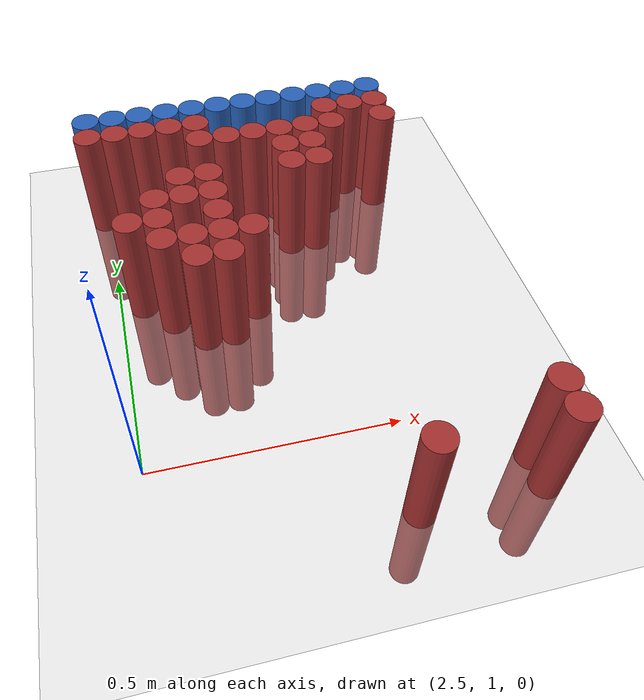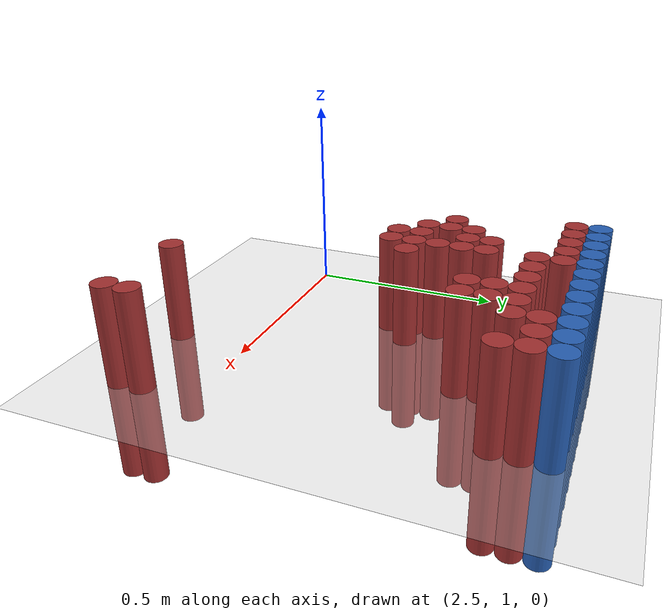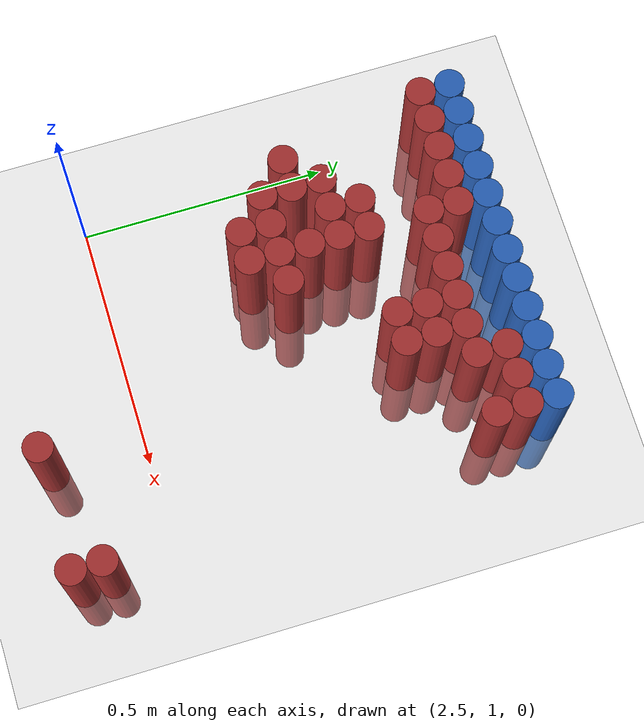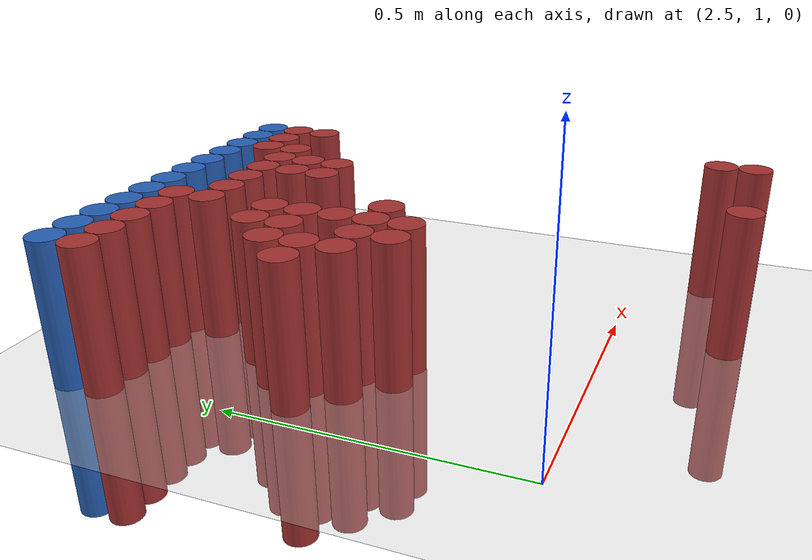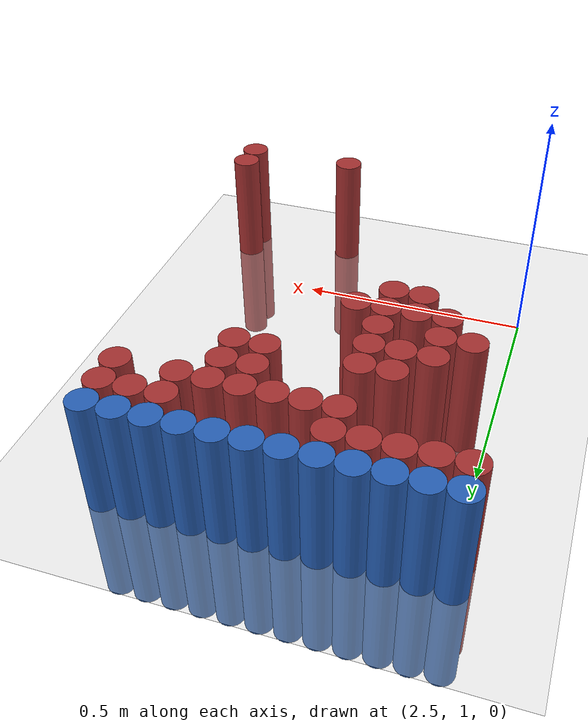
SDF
<sdf version="1.6">
 <world name="default">
  <model name="ground_plane">
   <static>1</static>
   <link name="link">
    <collision name="collision">
     <geometry><plane><normal>0 0 1</normal><size>100 100</size></plane></geometry>
     <surface><friction><ode><mu>100</mu><mu2>50</mu2></ode></friction></surface>
    </collision>
    <visual name="visual">
     <cast_shadows>0</cast_shadows>
     <geometry><plane><normal>0 0 1</normal><size>100 100</size></plane></geometry>
     <material>
      <script><uri>file://media/materials/scripts/gazebo.material</uri><name>Gazebo/Grey</name></script>
     </material>
    </visual>
   </link>
  </model>
  <model name="unit_cylinder_102">
   <static>1</static>
   <pose>2.490000 1.770000 0.000000 0.000000 0.000000 0.000000</pose>
   <link name="link">
    <inertial>
     <mass>1</mass>
     <inertia><ixx>0.145833</ixx><ixy>0</ixy><ixz>0</ixz><iyy>0.145833</iyy><iyz>0</iyz><izz>0.125</izz></inertia>
    </inertial>
    <collision name="collision">
     <geometry><cylinder><radius>0.030000</radius><length>0.5</length></cylinder></geometry>
    </collision>
    <visual name="visual">
     <geometry><cylinder><radius>0.030000</radius><length>0.5</length></cylinder></geometry>
     <material>
      <ambient>0.152000 0.379000 0.720000 1</ambient>
      <diffuse>0.152000 0.379000 0.720000 1</diffuse>
     </material>
     <material>
      <script><name>Gazebo/Grey</name><uri>file://media/materials/scripts/gazebo.material</uri></script>
     </material>
    </visual>
   </link>
  </model>
  <model name="unit_cylinder_103">
   <static>1</static>
   <pose>2.550000 1.770000 0.000000 0.000000 0.000000 0.000000</pose>
   <link name="link">
    <inertial>
     <mass>1</mass>
     <inertia><ixx>0.145833</ixx><ixy>0</ixy><ixz>0</ixz><iyy>0.145833</iyy><iyz>0</iyz><izz>0.125</izz></inertia>
    </inertial>
    <collision name="collision">
     <geometry><cylinder><radius>0.030000</radius><length>0.5</length></cylinder></geometry>
    </collision>
    <visual name="visual">
     <geometry><cylinder><radius>0.030000</radius><length>0.5</length></cylinder></geometry>
     <material>
      <ambient>0.152000 0.379000 0.720000 1</ambient>
      <diffuse>0.152000 0.379000 0.720000 1</diffuse>
     </material>
     <material>
      <script><name>Gazebo/Grey</name><uri>file://media/materials/scripts/gazebo.material</uri></script>
     </material>
    </visual>
   </link>
  </model>
  <model name="unit_cylinder_104">
   <static>1</static>
   <pose>2.610000 1.770000 0.000000 0.000000 0.000000 0.000000</pose>
   <link name="link">
    <inertial>
     <mass>1</mass>
     <inertia><ixx>0.145833</ixx><ixy>0</ixy><ixz>0</ixz><iyy>0.145833</iyy><iyz>0</iyz><izz>0.125</izz></inertia>
    </inertial>
    <collision name="collision">
     <geometry><cylinder><radius>0.030000</radius><length>0.5</length></cylinder></geometry>
    </collision>
    <visual name="visual">
     <geometry><cylinder><radius>0.030000</radius><length>0.5</length></cylinder></geometry>
     <material>
      <ambient>0.152000 0.379000 0.720000 1</ambient>
      <diffuse>0.152000 0.379000 0.720000 1</diffuse>
     </material>
     <material>
      <script><name>Gazebo/Grey</name><uri>file://media/materials/scripts/gazebo.material</uri></script>
     </material>
    </visual>
   </link>
  </model>
  <model name="unit_cylinder_105">
   <static>1</static>
   <pose>2.670000 1.770000 0.000000 0.000000 0.000000 0.000000</pose>
   <link name="link">
    <inertial>
     <mass>1</mass>
     <inertia><ixx>0.145833</ixx><ixy>0</ixy><ixz>0</ixz><iyy>0.145833</iyy><iyz>0</iyz><izz>0.125</izz></inertia>
    </inertial>
    <collision name="collision">
     <geometry><cylinder><radius>0.030000</radius><length>0.5</length></cylinder></geometry>
    </collision>
    <visual name="visual">
     <geometry><cylinder><radius>0.030000</radius><length>0.5</length></cylinder></geometry>
     <material>
      <ambient>0.152000 0.379000 0.720000 1</ambient>
      <diffuse>0.152000 0.379000 0.720000 1</diffuse>
     </material>
     <material>
      <script><name>Gazebo/Grey</name><uri>file://media/materials/scripts/gazebo.material</uri></script>
     </material>
    </visual>
   </link>
  </model>
  <model name="unit_cylinder_106">
   <static>1</static>
   <pose>2.730000 1.770000 0.000000 0.000000 0.000000 0.000000</pose>
   <link name="link">
    <inertial>
     <mass>1</mass>
     <inertia><ixx>0.145833</ixx><ixy>0</ixy><ixz>0</ixz><iyy>0.145833</iyy><iyz>0</iyz><izz>0.125</izz></inertia>
    </inertial>
    <collision name="collision">
     <geometry><cylinder><radius>0.030000</radius><length>0.5</length></cylinder></geometry>
    </collision>
    <visual name="visual">
     <geometry><cylinder><radius>0.030000</radius><length>0.5</length></cylinder></geometry>
     <material>
      <ambient>0.152000 0.379000 0.720000 1</ambient>
      <diffuse>0.152000 0.379000 0.720000 1</diffuse>
     </material>
     <material>
      <script><name>Gazebo/Grey</name><uri>file://media/materials/scripts/gazebo.material</uri></script>
     </material>
    </visual>
   </link>
  </model>
  <model name="unit_cylinder_107">
   <static>1</static>
   <pose>2.790000 1.770000 0.000000 0.000000 0.000000 0.000000</pose>
   <link name="link">
    <inertial>
     <mass>1</mass>
     <inertia><ixx>0.145833</ixx><ixy>0</ixy><ixz>0</ixz><iyy>0.145833</iyy><iyz>0</iyz><izz>0.125</izz></inertia>
    </inertial>
    <collision name="collision">
     <geometry><cylinder><radius>0.030000</radius><length>0.5</length></cylinder></geometry>
    </collision>
    <visual name="visual">
     <geometry><cylinder><radius>0.030000</radius><length>0.5</length></cylinder></geometry>
     <material>
      <ambient>0.152000 0.379000 0.720000 1</ambient>
      <diffuse>0.152000 0.379000 0.720000 1</diffuse>
     </material>
     <material>
      <script><name>Gazebo/Grey</name><uri>file://media/materials/scripts/gazebo.material</uri></script>
     </material>
    </visual>
   </link>
  </model>
  <model name="unit_cylinder_108">
   <static>1</static>
   <pose>2.850000 1.770000 0.000000 0.000000 0.000000 0.000000</pose>
   <link name="link">
    <inertial>
     <mass>1</mass>
     <inertia><ixx>0.145833</ixx><ixy>0</ixy><ixz>0</ixz><iyy>0.145833</iyy><iyz>0</iyz><izz>0.125</izz></inertia>
    </inertial>
    <collision name="collision">
     <geometry><cylinder><radius>0.030000</radius><length>0.5</length></cylinder></geometry>
    </collision>
    <visual name="visual">
     <geometry><cylinder><radius>0.030000</radius><length>0.5</length></cylinder></geometry>
     <material>
      <ambient>0.152000 0.379000 0.720000 1</ambient>
      <diffuse>0.152000 0.379000 0.720000 1</diffuse>
     </material>
     <material>
      <script><name>Gazebo/Grey</name><uri>file://media/materials/scripts/gazebo.material</uri></script>
     </material>
    </visual>
   </link>
  </model>
  <model name="unit_cylinder_109">
   <static>1</static>
   <pose>2.910000 1.770000 0.000000 0.000000 0.000000 0.000000</pose>
   <link name="link">
    <inertial>
     <mass>1</mass>
     <inertia><ixx>0.145833</ixx><ixy>0</ixy><ixz>0</ixz><iyy>0.145833</iyy><iyz>0</iyz><izz>0.125</izz></inertia>
    </inertial>
    <collision name="collision">
     <geometry><cylinder><radius>0.030000</radius><length>0.5</length></cylinder></geometry>
    </collision>
    <visual name="visual">
     <geometry><cylinder><radius>0.030000</radius><length>0.5</length></cylinder></geometry>
     <material>
      <ambient>0.152000 0.379000 0.720000 1</ambient>
      <diffuse>0.152000 0.379000 0.720000 1</diffuse>
     </material>
     <material>
      <script><name>Gazebo/Grey</name><uri>file://media/materials/scripts/gazebo.material</uri></script>
     </material>
    </visual>
   </link>
  </model>
  <model name="unit_cylinder_110">
   <static>1</static>
   <pose>2.970000 1.770000 0.000000 0.000000 0.000000 0.000000</pose>
   <link name="link">
    <inertial>
     <mass>1</mass>
     <inertia><ixx>0.145833</ixx><ixy>0</ixy><ixz>0</ixz><iyy>0.145833</iyy><iyz>0</iyz><izz>0.125</izz></inertia>
    </inertial>
    <collision name="collision">
     <geometry><cylinder><radius>0.030000</radius><length>0.5</length></cylinder></geometry>
    </collision>
    <visual name="visual">
     <geometry><cylinder><radius>0.030000</radius><length>0.5</length></cylinder></geometry>
     <material>
      <ambient>0.152000 0.379000 0.720000 1</ambient>
      <diffuse>0.152000 0.379000 0.720000 1</diffuse>
     </material>
     <material>
      <script><name>Gazebo/Grey</name><uri>file://media/materials/scripts/gazebo.material</uri></script>
     </material>
    </visual>
   </link>
  </model>
  <model name="unit_cylinder_111">
   <static>1</static>
   <pose>3.030000 1.770000 0.000000 0.000000 0.000000 0.000000</pose>
   <link name="link">
    <inertial>
     <mass>1</mass>
     <inertia><ixx>0.145833</ixx><ixy>0</ixy><ixz>0</ixz><iyy>0.145833</iyy><iyz>0</iyz><izz>0.125</izz></inertia>
    </inertial>
    <collision name="collision">
     <geometry><cylinder><radius>0.030000</radius><length>0.5</length></cylinder></geometry>
    </collision>
    <visual name="visual">
     <geometry><cylinder><radius>0.030000</radius><length>0.5</length></cylinder></geometry>
     <material>
      <ambient>0.152000 0.379000 0.720000 1</ambient>
      <diffuse>0.152000 0.379000 0.720000 1</diffuse>
     </material>
     <material>
      <script><name>Gazebo/Grey</name><uri>file://media/materials/scripts/gazebo.material</uri></script>
     </material>
    </visual>
   </link>
  </model>
  <model name="unit_cylinder_112">
   <static>1</static>
   <pose>3.090000 1.770000 0.000000 0.000000 0.000000 0.000000</pose>
   <link name="link">
    <inertial>
     <mass>1</mass>
     <inertia><ixx>0.145833</ixx><ixy>0</ixy><ixz>0</ixz><iyy>0.145833</iyy><iyz>0</iyz><izz>0.125</izz></inertia>
    </inertial>
    <collision name="collision">
     <geometry><cylinder><radius>0.030000</radius><length>0.5</length></cylinder></geometry>
    </collision>
    <visual name="visual">
     <geometry><cylinder><radius>0.030000</radius><length>0.5</length></cylinder></geometry>
     <material>
      <ambient>0.152000 0.379000 0.720000 1</ambient>
      <diffuse>0.152000 0.379000 0.720000 1</diffuse>
     </material>
     <material>
      <script><name>Gazebo/Grey</name><uri>file://media/materials/scripts/gazebo.material</uri></script>
     </material>
    </visual>
   </link>
  </model>
  <model name="unit_cylinder_113">
   <static>1</static>
   <pose>3.150000 1.770000 0.000000 0.000000 0.000000 0.000000</pose>
   <link name="link">
    <inertial>
     <mass>1</mass>
     <inertia><ixx>0.145833</ixx><ixy>0</ixy><ixz>0</ixz><iyy>0.145833</iyy><iyz>0</iyz><izz>0.125</izz></inertia>
    </inertial>
    <collision name="collision">
     <geometry><cylinder><radius>0.030000</radius><length>0.5</length></cylinder></geometry>
    </collision>
    <visual name="visual">
     <geometry><cylinder><radius>0.030000</radius><length>0.5</length></cylinder></geometry>
     <material>
      <ambient>0.152000 0.379000 0.720000 1</ambient>
      <diffuse>0.152000 0.379000 0.720000 1</diffuse>
     </material>
     <material>
      <script><name>Gazebo/Grey</name><uri>file://media/materials/scripts/gazebo.material</uri></script>
     </material>
    </visual>
   </link>
  </model>
  <model name="unit_cylinder_130">
   <static>1</static>
   <pose>2.490000 1.710000 0.000000 0.000000 0.000000 0.000000</pose>
   <link name="link">
    <inertial>
     <mass>1</mass>
     <inertia><ixx>0.145833</ixx><ixy>0</ixy><ixz>0</ixz><iyy>0.145833</iyy><iyz>0</iyz><izz>0.125</izz></inertia>
    </inertial>
    <collision name="collision">
     <geometry><cylinder><radius>0.030000</radius><length>0.5</length></cylinder></geometry>
    </collision>
    <visual name="visual">
     <geometry><cylinder><radius>0.030000</radius><length>0.5</length></cylinder></geometry>
     <material>
      <ambient>0.648000 0.192000 0.192000 1</ambient>
      <diffuse>0.648000 0.192000 0.192000 1</diffuse>
     </material>
     <material>
      <script><name>Gazebo/Grey</name><uri>file://media/materials/scripts/gazebo.material</uri></script>
     </material>
    </visual>
   </link>
  </model>
  <model name="unit_cylinder_131">
   <static>1</static>
   <pose>2.550000 1.710000 0.000000 0.000000 0.000000 0.000000</pose>
   <link name="link">
    <inertial>
     <mass>1</mass>
     <inertia><ixx>0.145833</ixx><ixy>0</ixy><ixz>0</ixz><iyy>0.145833</iyy><iyz>0</iyz><izz>0.125</izz></inertia>
    </inertial>
    <collision name="collision">
     <geometry><cylinder><radius>0.030000</radius><length>0.5</length></cylinder></geometry>
    </collision>
    <visual name="visual">
     <geometry><cylinder><radius>0.030000</radius><length>0.5</length></cylinder></geometry>
     <material>
      <ambient>0.648000 0.192000 0.192000 1</ambient>
      <diffuse>0.648000 0.192000 0.192000 1</diffuse>
     </material>
     <material>
      <script><name>Gazebo/Grey</name><uri>file://media/materials/scripts/gazebo.material</uri></script>
     </material>
    </visual>
   </link>
  </model>
  <model name="unit_cylinder_132">
   <static>1</static>
   <pose>2.610000 1.710000 0.000000 0.000000 0.000000 0.000000</pose>
   <link name="link">
    <inertial>
     <mass>1</mass>
     <inertia><ixx>0.145833</ixx><ixy>0</ixy><ixz>0</ixz><iyy>0.145833</iyy><iyz>0</iyz><izz>0.125</izz></inertia>
    </inertial>
    <collision name="collision">
     <geometry><cylinder><radius>0.030000</radius><length>0.5</length></cylinder></geometry>
    </collision>
    <visual name="visual">
     <geometry><cylinder><radius>0.030000</radius><length>0.5</length></cylinder></geometry>
     <material>
      <ambient>0.648000 0.192000 0.192000 1</ambient>
      <diffuse>0.648000 0.192000 0.192000 1</diffuse>
     </material>
     <material>
      <script><name>Gazebo/Grey</name><uri>file://media/materials/scripts/gazebo.material</uri></script>
     </material>
    </visual>
   </link>
  </model>
  <model name="unit_cylinder_133">
   <static>1</static>
   <pose>2.670000 1.710000 0.000000 0.000000 0.000000 0.000000</pose>
   <link name="link">
    <inertial>
     <mass>1</mass>
     <inertia><ixx>0.145833</ixx><ixy>0</ixy><ixz>0</ixz><iyy>0.145833</iyy><iyz>0</iyz><izz>0.125</izz></inertia>
    </inertial>
    <collision name="collision">
     <geometry><cylinder><radius>0.030000</radius><length>0.5</length></cylinder></geometry>
    </collision>
    <visual name="visual">
     <geometry><cylinder><radius>0.030000</radius><length>0.5</length></cylinder></geometry>
     <material>
      <ambient>0.648000 0.192000 0.192000 1</ambient>
      <diffuse>0.648000 0.192000 0.192000 1</diffuse>
     </material>
     <material>
      <script><name>Gazebo/Grey</name><uri>file://media/materials/scripts/gazebo.material</uri></script>
     </material>
    </visual>
   </link>
  </model>
  <model name="unit_cylinder_134">
   <static>1</static>
   <pose>2.730000 1.710000 0.000000 0.000000 0.000000 0.000000</pose>
   <link name="link">
    <inertial>
     <mass>1</mass>
     <inertia><ixx>0.145833</ixx><ixy>0</ixy><ixz>0</ixz><iyy>0.145833</iyy><iyz>0</iyz><izz>0.125</izz></inertia>
    </inertial>
    <collision name="collision">
     <geometry><cylinder><radius>0.030000</radius><length>0.5</length></cylinder></geometry>
    </collision>
    <visual name="visual">
     <geometry><cylinder><radius>0.030000</radius><length>0.5</length></cylinder></geometry>
     <material>
      <ambient>0.648000 0.192000 0.192000 1</ambient>
      <diffuse>0.648000 0.192000 0.192000 1</diffuse>
     </material>
     <material>
      <script><name>Gazebo/Grey</name><uri>file://media/materials/scripts/gazebo.material</uri></script>
     </material>
    </visual>
   </link>
  </model>
  <model name="unit_cylinder_135">
   <static>1</static>
   <pose>3.030000 1.710000 0.000000 0.000000 0.000000 0.000000</pose>
   <link name="link">
    <inertial>
     <mass>1</mass>
     <inertia><ixx>0.145833</ixx><ixy>0</ixy><ixz>0</ixz><iyy>0.145833</iyy><iyz>0</iyz><izz>0.125</izz></inertia>
    </inertial>
    <collision name="collision">
     <geometry><cylinder><radius>0.030000</radius><length>0.5</length></cylinder></geometry>
    </collision>
    <visual name="visual">
     <geometry><cylinder><radius>0.030000</radius><length>0.5</length></cylinder></geometry>
     <material>
      <ambient>0.648000 0.192000 0.192000 1</ambient>
      <diffuse>0.648000 0.192000 0.192000 1</diffuse>
     </material>
     <material>
      <script><name>Gazebo/Grey</name><uri>file://media/materials/scripts/gazebo.material</uri></script>
     </material>
    </visual>
   </link>
  </model>
  <model name="unit_cylinder_136">
   <static>1</static>
   <pose>3.090000 1.710000 0.000000 0.000000 0.000000 0.000000</pose>
   <link name="link">
    <inertial>
     <mass>1</mass>
     <inertia><ixx>0.145833</ixx><ixy>0</ixy><ixz>0</ixz><iyy>0.145833</iyy><iyz>0</iyz><izz>0.125</izz></inertia>
    </inertial>
    <collision name="collision">
     <geometry><cylinder><radius>0.030000</radius><length>0.5</length></cylinder></geometry>
    </collision>
    <visual name="visual">
     <geometry><cylinder><radius>0.030000</radius><length>0.5</length></cylinder></geometry>
     <material>
      <ambient>0.648000 0.192000 0.192000 1</ambient>
      <diffuse>0.648000 0.192000 0.192000 1</diffuse>
     </material>
     <material>
      <script><name>Gazebo/Grey</name><uri>file://media/materials/scripts/gazebo.material</uri></script>
     </material>
    </visual>
   </link>
  </model>
  <model name="unit_cylinder_137">
   <static>1</static>
   <pose>3.150000 1.710000 0.000000 0.000000 0.000000 0.000000</pose>
   <link name="link">
    <inertial>
     <mass>1</mass>
     <inertia><ixx>0.145833</ixx><ixy>0</ixy><ixz>0</ixz><iyy>0.145833</iyy><iyz>0</iyz><izz>0.125</izz></inertia>
    </inertial>
    <collision name="collision">
     <geometry><cylinder><radius>0.030000</radius><length>0.5</length></cylinder></geometry>
    </collision>
    <visual name="visual">
     <geometry><cylinder><radius>0.030000</radius><length>0.5</length></cylinder></geometry>
     <material>
      <ambient>0.648000 0.192000 0.192000 1</ambient>
      <diffuse>0.648000 0.192000 0.192000 1</diffuse>
     </material>
     <material>
      <script><name>Gazebo/Grey</name><uri>file://media/materials/scripts/gazebo.material</uri></script>
     </material>
    </visual>
   </link>
  </model>
  <model name="unit_cylinder_147">
   <static>1</static>
   <pose>2.730000 1.650000 0.000000 0.000000 0.000000 0.000000</pose>
   <link name="link">
    <inertial>
     <mass>1</mass>
     <inertia><ixx>0.145833</ixx><ixy>0</ixy><ixz>0</ixz><iyy>0.145833</iyy><iyz>0</iyz><izz>0.125</izz></inertia>
    </inertial>
    <collision name="collision">
     <geometry><cylinder><radius>0.030000</radius><length>0.5</length></cylinder></geometry>
    </collision>
    <visual name="visual">
     <geometry><cylinder><radius>0.030000</radius><length>0.5</length></cylinder></geometry>
     <material>
      <ambient>0.648000 0.192000 0.192000 1</ambient>
      <diffuse>0.648000 0.192000 0.192000 1</diffuse>
     </material>
     <material>
      <script><name>Gazebo/Grey</name><uri>file://media/materials/scripts/gazebo.material</uri></script>
     </material>
    </visual>
   </link>
  </model>
  <model name="unit_cylinder_148">
   <static>1</static>
   <pose>2.790000 1.650000 0.000000 0.000000 0.000000 0.000000</pose>
   <link name="link">
    <inertial>
     <mass>1</mass>
     <inertia><ixx>0.145833</ixx><ixy>0</ixy><ixz>0</ixz><iyy>0.145833</iyy><iyz>0</iyz><izz>0.125</izz></inertia>
    </inertial>
    <collision name="collision">
     <geometry><cylinder><radius>0.030000</radius><length>0.5</length></cylinder></geometry>
    </collision>
    <visual name="visual">
     <geometry><cylinder><radius>0.030000</radius><length>0.5</length></cylinder></geometry>
     <material>
      <ambient>0.648000 0.192000 0.192000 1</ambient>
      <diffuse>0.648000 0.192000 0.192000 1</diffuse>
     </material>
     <material>
      <script><name>Gazebo/Grey</name><uri>file://media/materials/scripts/gazebo.material</uri></script>
     </material>
    </visual>
   </link>
  </model>
  <model name="unit_cylinder_149">
   <static>1</static>
   <pose>2.850000 1.650000 0.000000 0.000000 0.000000 0.000000</pose>
   <link name="link">
    <inertial>
     <mass>1</mass>
     <inertia><ixx>0.145833</ixx><ixy>0</ixy><ixz>0</ixz><iyy>0.145833</iyy><iyz>0</iyz><izz>0.125</izz></inertia>
    </inertial>
    <collision name="collision">
     <geometry><cylinder><radius>0.030000</radius><length>0.5</length></cylinder></geometry>
    </collision>
    <visual name="visual">
     <geometry><cylinder><radius>0.030000</radius><length>0.5</length></cylinder></geometry>
     <material>
      <ambient>0.648000 0.192000 0.192000 1</ambient>
      <diffuse>0.648000 0.192000 0.192000 1</diffuse>
     </material>
     <material>
      <script><name>Gazebo/Grey</name><uri>file://media/materials/scripts/gazebo.material</uri></script>
     </material>
    </visual>
   </link>
  </model>
  <model name="unit_cylinder_150">
   <static>1</static>
   <pose>2.910000 1.650000 0.000000 0.000000 0.000000 0.000000</pose>
   <link name="link">
    <inertial>
     <mass>1</mass>
     <inertia><ixx>0.145833</ixx><ixy>0</ixy><ixz>0</ixz><iyy>0.145833</iyy><iyz>0</iyz><izz>0.125</izz></inertia>
    </inertial>
    <collision name="collision">
     <geometry><cylinder><radius>0.030000</radius><length>0.5</length></cylinder></geometry>
    </collision>
    <visual name="visual">
     <geometry><cylinder><radius>0.030000</radius><length>0.5</length></cylinder></geometry>
     <material>
      <ambient>0.648000 0.192000 0.192000 1</ambient>
      <diffuse>0.648000 0.192000 0.192000 1</diffuse>
     </material>
     <material>
      <script><name>Gazebo/Grey</name><uri>file://media/materials/scripts/gazebo.material</uri></script>
     </material>
    </visual>
   </link>
  </model>
  <model name="unit_cylinder_151">
   <static>1</static>
   <pose>2.970000 1.650000 0.000000 0.000000 0.000000 0.000000</pose>
   <link name="link">
    <inertial>
     <mass>1</mass>
     <inertia><ixx>0.145833</ixx><ixy>0</ixy><ixz>0</ixz><iyy>0.145833</iyy><iyz>0</iyz><izz>0.125</izz></inertia>
    </inertial>
    <collision name="collision">
     <geometry><cylinder><radius>0.030000</radius><length>0.5</length></cylinder></geometry>
    </collision>
    <visual name="visual">
     <geometry><cylinder><radius>0.030000</radius><length>0.5</length></cylinder></geometry>
     <material>
      <ambient>0.648000 0.192000 0.192000 1</ambient>
      <diffuse>0.648000 0.192000 0.192000 1</diffuse>
     </material>
     <material>
      <script><name>Gazebo/Grey</name><uri>file://media/materials/scripts/gazebo.material</uri></script>
     </material>
    </visual>
   </link>
  </model>
  <model name="unit_cylinder_152">
   <static>1</static>
   <pose>3.030000 1.650000 0.000000 0.000000 0.000000 0.000000</pose>
   <link name="link">
    <inertial>
     <mass>1</mass>
     <inertia><ixx>0.145833</ixx><ixy>0</ixy><ixz>0</ixz><iyy>0.145833</iyy><iyz>0</iyz><izz>0.125</izz></inertia>
    </inertial>
    <collision name="collision">
     <geometry><cylinder><radius>0.030000</radius><length>0.5</length></cylinder></geometry>
    </collision>
    <visual name="visual">
     <geometry><cylinder><radius>0.030000</radius><length>0.5</length></cylinder></geometry>
     <material>
      <ambient>0.648000 0.192000 0.192000 1</ambient>
      <diffuse>0.648000 0.192000 0.192000 1</diffuse>
     </material>
     <material>
      <script><name>Gazebo/Grey</name><uri>file://media/materials/scripts/gazebo.material</uri></script>
     </material>
    </visual>
   </link>
  </model>
  <model name="unit_cylinder_153">
   <static>1</static>
   <pose>3.150000 1.650000 0.000000 0.000000 0.000000 0.000000</pose>
   <link name="link">
    <inertial>
     <mass>1</mass>
     <inertia><ixx>0.145833</ixx><ixy>0</ixy><ixz>0</ixz><iyy>0.145833</iyy><iyz>0</iyz><izz>0.125</izz></inertia>
    </inertial>
    <collision name="collision">
     <geometry><cylinder><radius>0.030000</radius><length>0.5</length></cylinder></geometry>
    </collision>
    <visual name="visual">
     <geometry><cylinder><radius>0.030000</radius><length>0.5</length></cylinder></geometry>
     <material>
      <ambient>0.648000 0.192000 0.192000 1</ambient>
      <diffuse>0.648000 0.192000 0.192000 1</diffuse>
     </material>
     <material>
      <script><name>Gazebo/Grey</name><uri>file://media/materials/scripts/gazebo.material</uri></script>
     </material>
    </visual>
   </link>
  </model>
  <model name="unit_cylinder_160">
   <static>1</static>
   <pose>2.910000 1.590000 0.000000 0.000000 0.000000 0.000000</pose>
   <link name="link">
    <inertial>
     <mass>1</mass>
     <inertia><ixx>0.145833</ixx><ixy>0</ixy><ixz>0</ixz><iyy>0.145833</iyy><iyz>0</iyz><izz>0.125</izz></inertia>
    </inertial>
    <collision name="collision">
     <geometry><cylinder><radius>0.030000</radius><length>0.5</length></cylinder></geometry>
    </collision>
    <visual name="visual">
     <geometry><cylinder><radius>0.030000</radius><length>0.5</length></cylinder></geometry>
     <material>
      <ambient>0.648000 0.192000 0.192000 1</ambient>
      <diffuse>0.648000 0.192000 0.192000 1</diffuse>
     </material>
     <material>
      <script><name>Gazebo/Grey</name><uri>file://media/materials/scripts/gazebo.material</uri></script>
     </material>
    </visual>
   </link>
  </model>
  <model name="unit_cylinder_161">
   <static>1</static>
   <pose>2.970000 1.590000 0.000000 0.000000 0.000000 0.000000</pose>
   <link name="link">
    <inertial>
     <mass>1</mass>
     <inertia><ixx>0.145833</ixx><ixy>0</ixy><ixz>0</ixz><iyy>0.145833</iyy><iyz>0</iyz><izz>0.125</izz></inertia>
    </inertial>
    <collision name="collision">
     <geometry><cylinder><radius>0.030000</radius><length>0.5</length></cylinder></geometry>
    </collision>
    <visual name="visual">
     <geometry><cylinder><radius>0.030000</radius><length>0.5</length></cylinder></geometry>
     <material>
      <ambient>0.648000 0.192000 0.192000 1</ambient>
      <diffuse>0.648000 0.192000 0.192000 1</diffuse>
     </material>
     <material>
      <script><name>Gazebo/Grey</name><uri>file://media/materials/scripts/gazebo.material</uri></script>
     </material>
    </visual>
   </link>
  </model>
  <model name="unit_cylinder_165">
   <static>1</static>
   <pose>2.670000 1.530000 0.000000 0.000000 0.000000 0.000000</pose>
   <link name="link">
    <inertial>
     <mass>1</mass>
     <inertia><ixx>0.145833</ixx><ixy>0</ixy><ixz>0</ixz><iyy>0.145833</iyy><iyz>0</iyz><izz>0.125</izz></inertia>
    </inertial>
    <collision name="collision">
     <geometry><cylinder><radius>0.030000</radius><length>0.5</length></cylinder></geometry>
    </collision>
    <visual name="visual">
     <geometry><cylinder><radius>0.030000</radius><length>0.5</length></cylinder></geometry>
     <material>
      <ambient>0.648000 0.192000 0.192000 1</ambient>
      <diffuse>0.648000 0.192000 0.192000 1</diffuse>
     </material>
     <material>
      <script><name>Gazebo/Grey</name><uri>file://media/materials/scripts/gazebo.material</uri></script>
     </material>
    </visual>
   </link>
  </model>
  <model name="unit_cylinder_166">
   <static>1</static>
   <pose>2.730000 1.530000 0.000000 0.000000 0.000000 0.000000</pose>
   <link name="link">
    <inertial>
     <mass>1</mass>
     <inertia><ixx>0.145833</ixx><ixy>0</ixy><ixz>0</ixz><iyy>0.145833</iyy><iyz>0</iyz><izz>0.125</izz></inertia>
    </inertial>
    <collision name="collision">
     <geometry><cylinder><radius>0.030000</radius><length>0.5</length></cylinder></geometry>
    </collision>
    <visual name="visual">
     <geometry><cylinder><radius>0.030000</radius><length>0.5</length></cylinder></geometry>
     <material>
      <ambient>0.648000 0.192000 0.192000 1</ambient>
      <diffuse>0.648000 0.192000 0.192000 1</diffuse>
     </material>
     <material>
      <script><name>Gazebo/Grey</name><uri>file://media/materials/scripts/gazebo.material</uri></script>
     </material>
    </visual>
   </link>
  </model>
  <model name="unit_cylinder_167">
   <static>1</static>
   <pose>2.910000 1.530000 0.000000 0.000000 0.000000 0.000000</pose>
   <link name="link">
    <inertial>
     <mass>1</mass>
     <inertia><ixx>0.145833</ixx><ixy>0</ixy><ixz>0</ixz><iyy>0.145833</iyy><iyz>0</iyz><izz>0.125</izz></inertia>
    </inertial>
    <collision name="collision">
     <geometry><cylinder><radius>0.030000</radius><length>0.5</length></cylinder></geometry>
    </collision>
    <visual name="visual">
     <geometry><cylinder><radius>0.030000</radius><length>0.5</length></cylinder></geometry>
     <material>
      <ambient>0.648000 0.192000 0.192000 1</ambient>
      <diffuse>0.648000 0.192000 0.192000 1</diffuse>
     </material>
     <material>
      <script><name>Gazebo/Grey</name><uri>file://media/materials/scripts/gazebo.material</uri></script>
     </material>
    </visual>
   </link>
  </model>
  <model name="unit_cylinder_168">
   <static>1</static>
   <pose>2.970000 1.530000 0.000000 0.000000 0.000000 0.000000</pose>
   <link name="link">
    <inertial>
     <mass>1</mass>
     <inertia><ixx>0.145833</ixx><ixy>0</ixy><ixz>0</ixz><iyy>0.145833</iyy><iyz>0</iyz><izz>0.125</izz></inertia>
    </inertial>
    <collision name="collision">
     <geometry><cylinder><radius>0.030000</radius><length>0.5</length></cylinder></geometry>
    </collision>
    <visual name="visual">
     <geometry><cylinder><radius>0.030000</radius><length>0.5</length></cylinder></geometry>
     <material>
      <ambient>0.648000 0.192000 0.192000 1</ambient>
      <diffuse>0.648000 0.192000 0.192000 1</diffuse>
     </material>
     <material>
      <script><name>Gazebo/Grey</name><uri>file://media/materials/scripts/gazebo.material</uri></script>
     </material>
    </visual>
   </link>
  </model>
  <model name="unit_cylinder_171">
   <static>1</static>
   <pose>2.610000 1.470000 0.000000 0.000000 0.000000 0.000000</pose>
   <link name="link">
    <inertial>
     <mass>1</mass>
     <inertia><ixx>0.145833</ixx><ixy>0</ixy><ixz>0</ixz><iyy>0.145833</iyy><iyz>0</iyz><izz>0.125</izz></inertia>
    </inertial>
    <collision name="collision">
     <geometry><cylinder><radius>0.030000</radius><length>0.5</length></cylinder></geometry>
    </collision>
    <visual name="visual">
     <geometry><cylinder><radius>0.030000</radius><length>0.5</length></cylinder></geometry>
     <material>
      <ambient>0.648000 0.192000 0.192000 1</ambient>
      <diffuse>0.648000 0.192000 0.192000 1</diffuse>
     </material>
     <material>
      <script><name>Gazebo/Grey</name><uri>file://media/materials/scripts/gazebo.material</uri></script>
     </material>
    </visual>
   </link>
  </model>
  <model name="unit_cylinder_172">
   <static>1</static>
   <pose>2.670000 1.470000 0.000000 0.000000 0.000000 0.000000</pose>
   <link name="link">
    <inertial>
     <mass>1</mass>
     <inertia><ixx>0.145833</ixx><ixy>0</ixy><ixz>0</ixz><iyy>0.145833</iyy><iyz>0</iyz><izz>0.125</izz></inertia>
    </inertial>
    <collision name="collision">
     <geometry><cylinder><radius>0.030000</radius><length>0.5</length></cylinder></geometry>
    </collision>
    <visual name="visual">
     <geometry><cylinder><radius>0.030000</radius><length>0.5</length></cylinder></geometry>
     <material>
      <ambient>0.648000 0.192000 0.192000 1</ambient>
      <diffuse>0.648000 0.192000 0.192000 1</diffuse>
     </material>
     <material>
      <script><name>Gazebo/Grey</name><uri>file://media/materials/scripts/gazebo.material</uri></script>
     </material>
    </visual>
   </link>
  </model>
  <model name="unit_cylinder_173">
   <static>1</static>
   <pose>2.730000 1.470000 0.000000 0.000000 0.000000 0.000000</pose>
   <link name="link">
    <inertial>
     <mass>1</mass>
     <inertia><ixx>0.145833</ixx><ixy>0</ixy><ixz>0</ixz><iyy>0.145833</iyy><iyz>0</iyz><izz>0.125</izz></inertia>
    </inertial>
    <collision name="collision">
     <geometry><cylinder><radius>0.030000</radius><length>0.5</length></cylinder></geometry>
    </collision>
    <visual name="visual">
     <geometry><cylinder><radius>0.030000</radius><length>0.5</length></cylinder></geometry>
     <material>
      <ambient>0.648000 0.192000 0.192000 1</ambient>
      <diffuse>0.648000 0.192000 0.192000 1</diffuse>
     </material>
     <material>
      <script><name>Gazebo/Grey</name><uri>file://media/materials/scripts/gazebo.material</uri></script>
     </material>
    </visual>
   </link>
  </model>
  <model name="unit_cylinder_174">
   <static>1</static>
   <pose>2.550000 1.410000 0.000000 0.000000 0.000000 0.000000</pose>
   <link name="link">
    <inertial>
     <mass>1</mass>
     <inertia><ixx>0.145833</ixx><ixy>0</ixy><ixz>0</ixz><iyy>0.145833</iyy><iyz>0</iyz><izz>0.125</izz></inertia>
    </inertial>
    <collision name="collision">
     <geometry><cylinder><radius>0.030000</radius><length>0.5</length></cylinder></geometry>
    </collision>
    <visual name="visual">
     <geometry><cylinder><radius>0.030000</radius><length>0.5</length></cylinder></geometry>
     <material>
      <ambient>0.648000 0.192000 0.192000 1</ambient>
      <diffuse>0.648000 0.192000 0.192000 1</diffuse>
     </material>
     <material>
      <script><name>Gazebo/Grey</name><uri>file://media/materials/scripts/gazebo.material</uri></script>
     </material>
    </visual>
   </link>
  </model>
  <model name="unit_cylinder_175">
   <static>1</static>
   <pose>2.610000 1.410000 0.000000 0.000000 0.000000 0.000000</pose>
   <link name="link">
    <inertial>
     <mass>1</mass>
     <inertia><ixx>0.145833</ixx><ixy>0</ixy><ixz>0</ixz><iyy>0.145833</iyy><iyz>0</iyz><izz>0.125</izz></inertia>
    </inertial>
    <collision name="collision">
     <geometry><cylinder><radius>0.030000</radius><length>0.5</length></cylinder></geometry>
    </collision>
    <visual name="visual">
     <geometry><cylinder><radius>0.030000</radius><length>0.5</length></cylinder></geometry>
     <material>
      <ambient>0.648000 0.192000 0.192000 1</ambient>
      <diffuse>0.648000 0.192000 0.192000 1</diffuse>
     </material>
     <material>
      <script><name>Gazebo/Grey</name><uri>file://media/materials/scripts/gazebo.material</uri></script>
     </material>
    </visual>
   </link>
  </model>
  <model name="unit_cylinder_176">
   <static>1</static>
   <pose>2.730000 1.410000 0.000000 0.000000 0.000000 0.000000</pose>
   <link name="link">
    <inertial>
     <mass>1</mass>
     <inertia><ixx>0.145833</ixx><ixy>0</ixy><ixz>0</ixz><iyy>0.145833</iyy><iyz>0</iyz><izz>0.125</izz></inertia>
    </inertial>
    <collision name="collision">
     <geometry><cylinder><radius>0.030000</radius><length>0.5</length></cylinder></geometry>
    </collision>
    <visual name="visual">
     <geometry><cylinder><radius>0.030000</radius><length>0.5</length></cylinder></geometry>
     <material>
      <ambient>0.648000 0.192000 0.192000 1</ambient>
      <diffuse>0.648000 0.192000 0.192000 1</diffuse>
     </material>
     <material>
      <script><name>Gazebo/Grey</name><uri>file://media/materials/scripts/gazebo.material</uri></script>
     </material>
    </visual>
   </link>
  </model>
  <model name="unit_cylinder_177">
   <static>1</static>
   <pose>2.610000 1.350000 0.000000 0.000000 0.000000 0.000000</pose>
   <link name="link">
    <inertial>
     <mass>1</mass>
     <inertia><ixx>0.145833</ixx><ixy>0</ixy><ixz>0</ixz><iyy>0.145833</iyy><iyz>0</iyz><izz>0.125</izz></inertia>
    </inertial>
    <collision name="collision">
     <geometry><cylinder><radius>0.030000</radius><length>0.5</length></cylinder></geometry>
    </collision>
    <visual name="visual">
     <geometry><cylinder><radius>0.030000</radius><length>0.5</length></cylinder></geometry>
     <material>
      <ambient>0.648000 0.192000 0.192000 1</ambient>
      <diffuse>0.648000 0.192000 0.192000 1</diffuse>
     </material>
     <material>
      <script><name>Gazebo/Grey</name><uri>file://media/materials/scripts/gazebo.material</uri></script>
     </material>
    </visual>
   </link>
  </model>
  <model name="unit_cylinder_178">
   <static>1</static>
   <pose>2.670000 1.350000 0.000000 0.000000 0.000000 0.000000</pose>
   <link name="link">
    <inertial>
     <mass>1</mass>
     <inertia><ixx>0.145833</ixx><ixy>0</ixy><ixz>0</ixz><iyy>0.145833</iyy><iyz>0</iyz><izz>0.125</izz></inertia>
    </inertial>
    <collision name="collision">
     <geometry><cylinder><radius>0.030000</radius><length>0.5</length></cylinder></geometry>
    </collision>
    <visual name="visual">
     <geometry><cylinder><radius>0.030000</radius><length>0.5</length></cylinder></geometry>
     <material>
      <ambient>0.648000 0.192000 0.192000 1</ambient>
      <diffuse>0.648000 0.192000 0.192000 1</diffuse>
     </material>
     <material>
      <script><name>Gazebo/Grey</name><uri>file://media/materials/scripts/gazebo.material</uri></script>
     </material>
    </visual>
   </link>
  </model>
  <model name="unit_cylinder_179">
   <static>1</static>
   <pose>2.730000 1.350000 0.000000 0.000000 0.000000 0.000000</pose>
   <link name="link">
    <inertial>
     <mass>1</mass>
     <inertia><ixx>0.145833</ixx><ixy>0</ixy><ixz>0</ixz><iyy>0.145833</iyy><iyz>0</iyz><izz>0.125</izz></inertia>
    </inertial>
    <collision name="collision">
     <geometry><cylinder><radius>0.030000</radius><length>0.5</length></cylinder></geometry>
    </collision>
    <visual name="visual">
     <geometry><cylinder><radius>0.030000</radius><length>0.5</length></cylinder></geometry>
     <material>
      <ambient>0.648000 0.192000 0.192000 1</ambient>
      <diffuse>0.648000 0.192000 0.192000 1</diffuse>
     </material>
     <material>
      <script><name>Gazebo/Grey</name><uri>file://media/materials/scripts/gazebo.material</uri></script>
     </material>
    </visual>
   </link>
  </model>
  <model name="unit_cylinder_180">
   <static>1</static>
   <pose>2.790000 1.350000 0.000000 0.000000 0.000000 0.000000</pose>
   <link name="link">
    <inertial>
     <mass>1</mass>
     <inertia><ixx>0.145833</ixx><ixy>0</ixy><ixz>0</ixz><iyy>0.145833</iyy><iyz>0</iyz><izz>0.125</izz></inertia>
    </inertial>
    <collision name="collision">
     <geometry><cylinder><radius>0.030000</radius><length>0.5</length></cylinder></geometry>
    </collision>
    <visual name="visual">
     <geometry><cylinder><radius>0.030000</radius><length>0.5</length></cylinder></geometry>
     <material>
      <ambient>0.648000 0.192000 0.192000 1</ambient>
      <diffuse>0.648000 0.192000 0.192000 1</diffuse>
     </material>
     <material>
      <script><name>Gazebo/Grey</name><uri>file://media/materials/scripts/gazebo.material</uri></script>
     </material>
    </visual>
   </link>
  </model>
  <model name="unit_cylinder_181">
   <static>1</static>
   <pose>2.670000 1.290000 0.000000 0.000000 0.000000 0.000000</pose>
   <link name="link">
    <inertial>
     <mass>1</mass>
     <inertia><ixx>0.145833</ixx><ixy>0</ixy><ixz>0</ixz><iyy>0.145833</iyy><iyz>0</iyz><izz>0.125</izz></inertia>
    </inertial>
    <collision name="collision">
     <geometry><cylinder><radius>0.030000</radius><length>0.5</length></cylinder></geometry>
    </collision>
    <visual name="visual">
     <geometry><cylinder><radius>0.030000</radius><length>0.5</length></cylinder></geometry>
     <material>
      <ambient>0.648000 0.192000 0.192000 1</ambient>
      <diffuse>0.648000 0.192000 0.192000 1</diffuse>
     </material>
     <material>
      <script><name>Gazebo/Grey</name><uri>file://media/materials/scripts/gazebo.material</uri></script>
     </material>
    </visual>
   </link>
  </model>
  <model name="unit_cylinder_182">
   <static>1</static>
   <pose>2.730000 1.290000 0.000000 0.000000 0.000000 0.000000</pose>
   <link name="link">
    <inertial>
     <mass>1</mass>
     <inertia><ixx>0.145833</ixx><ixy>0</ixy><ixz>0</ixz><iyy>0.145833</iyy><iyz>0</iyz><izz>0.125</izz></inertia>
    </inertial>
    <collision name="collision">
     <geometry><cylinder><radius>0.030000</radius><length>0.5</length></cylinder></geometry>
    </collision>
    <visual name="visual">
     <geometry><cylinder><radius>0.030000</radius><length>0.5</length></cylinder></geometry>
     <material>
      <ambient>0.648000 0.192000 0.192000 1</ambient>
      <diffuse>0.648000 0.192000 0.192000 1</diffuse>
     </material>
     <material>
      <script><name>Gazebo/Grey</name><uri>file://media/materials/scripts/gazebo.material</uri></script>
     </material>
    </visual>
   </link>
  </model>
  <model name="unit_cylinder_208">
   <static>1</static>
   <pose>3.210000 0.870000 0.000000 0.000000 0.000000 0.000000</pose>
   <link name="link">
    <inertial>
     <mass>1</mass>
     <inertia><ixx>0.145833</ixx><ixy>0</ixy><ixz>0</ixz><iyy>0.145833</iyy><iyz>0</iyz><izz>0.125</izz></inertia>
    </inertial>
    <collision name="collision">
     <geometry><cylinder><radius>0.030000</radius><length>0.5</length></cylinder></geometry>
    </collision>
    <visual name="visual">
     <geometry><cylinder><radius>0.030000</radius><length>0.5</length></cylinder></geometry>
     <material>
      <ambient>0.648000 0.192000 0.192000 1</ambient>
      <diffuse>0.648000 0.192000 0.192000 1</diffuse>
     </material>
     <material>
      <script><name>Gazebo/Grey</name><uri>file://media/materials/scripts/gazebo.material</uri></script>
     </material>
    </visual>
   </link>
  </model>
  <model name="unit_cylinder_212">
   <static>1</static>
   <pose>2.970000 0.810000 0.000000 0.000000 0.000000 0.000000</pose>
   <link name="link">
    <inertial>
     <mass>1</mass>
     <inertia><ixx>0.145833</ixx><ixy>0</ixy><ixz>0</ixz><iyy>0.145833</iyy><iyz>0</iyz><izz>0.125</izz></inertia>
    </inertial>
    <collision name="collision">
     <geometry><cylinder><radius>0.030000</radius><length>0.5</length></cylinder></geometry>
    </collision>
    <visual name="visual">
     <geometry><cylinder><radius>0.030000</radius><length>0.5</length></cylinder></geometry>
     <material>
      <ambient>0.648000 0.192000 0.192000 1</ambient>
      <diffuse>0.648000 0.192000 0.192000 1</diffuse>
     </material>
     <material>
      <script><name>Gazebo/Grey</name><uri>file://media/materials/scripts/gazebo.material</uri></script>
     </material>
    </visual>
   </link>
  </model>
  <model name="unit_cylinder_213">
   <static>1</static>
   <pose>3.210000 0.810000 0.000000 0.000000 0.000000 0.000000</pose>
   <link name="link">
    <inertial>
     <mass>1</mass>
     <inertia><ixx>0.145833</ixx><ixy>0</ixy><ixz>0</ixz><iyy>0.145833</iyy><iyz>0</iyz><izz>0.125</izz></inertia>
    </inertial>
    <collision name="collision">
     <geometry><cylinder><radius>0.030000</radius><length>0.5</length></cylinder></geometry>
    </collision>
    <visual name="visual">
     <geometry><cylinder><radius>0.030000</radius><length>0.5</length></cylinder></geometry>
     <material>
      <ambient>0.648000 0.192000 0.192000 1</ambient>
      <diffuse>0.648000 0.192000 0.192000 1</diffuse>
     </material>
     <material>
      <script><name>Gazebo/Grey</name><uri>file://media/materials/scripts/gazebo.material</uri></script>
     </material>
    </visual>
   </link>
  </model>
 </world>
</sdf>
